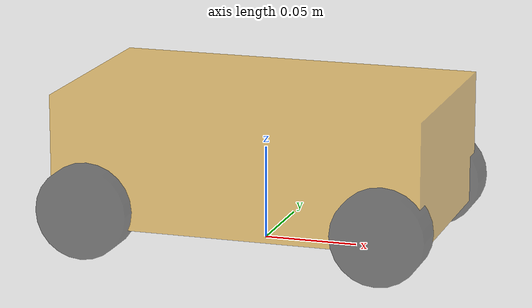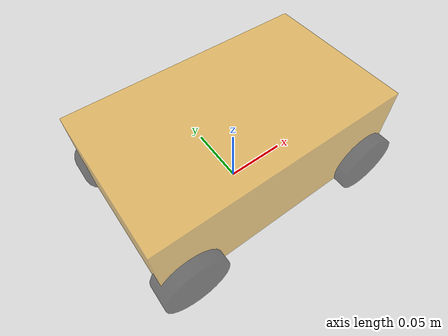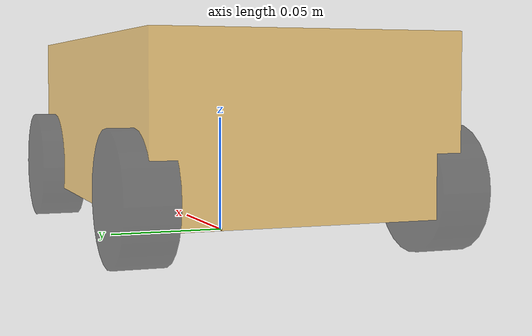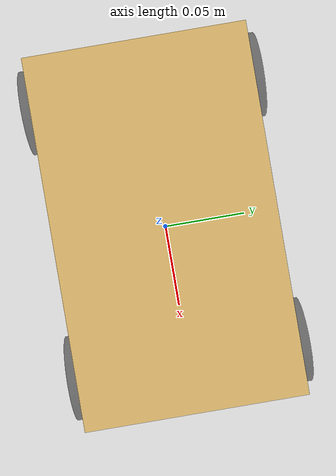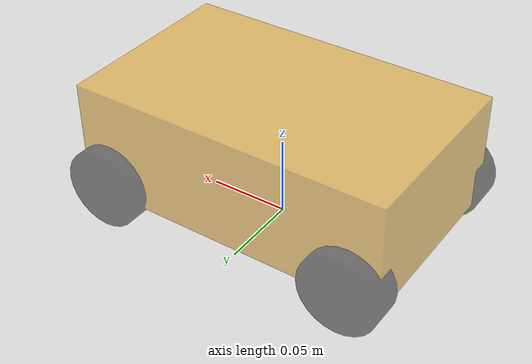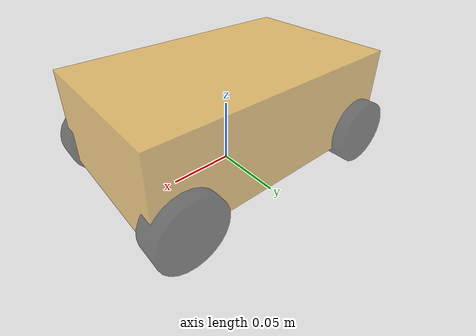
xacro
<!-- 底盘实现 -->
<robot xmlns:xacro="http://www.ros.org/wiki/xacro">
    <xacro:property name="PI" value="3.1415926" />

    <xacro:property name="car_length" value="0.2" />
    <xacro:property name="car_width" value="0.12" />
    <xacro:property name="car_height" value="0.07" />

    <xacro:property name="wheel_radius" value="0.025" />
    <xacro:property name="wheel_length" value="0.02" />

    <xacro:property name="wheel_joint_x" value="0.08" />
    <xacro:property name="wheel_joint_y" value="${car_width / 2}" />
    <xacro:property name="wheel_joint_z" value="${-(car_height / 2 + distance - wheel_radius)}" />

    <xacro:property name="distance" value="0.015" />

    <material name="yellow">
        <color rgba="0.9 0.6 0.0 0.5"/>
    </material>
    <material name="black">
        <color rgba="0.0 0.0 0.0 0.5"/>
    </material>
    <material name="lucency">
        <color rgba="0.0 0.0 0.0 0.0"/>
    </material>

    <link name="base_footprint">
        <!-- 形状描述 -->
        <visual>
            <geometry>
                <box size="0.001 0.001 0.001"/>
            </geometry>
            <material name="lucency"/>
        </visual>
        <!-- 碰撞描述 -->
        <collision>
            <geometry>
                <box size="0.001 0.001 0.001"/>
            </geometry>
        </collision>
        <!-- 物理信息 -->
        <inertial>
            <mass value="0.001"/>
            <inertia ixx="0.0" ixy="0.0" ixz="0.0" iyy="0.0" iyz="0.0" izz="0.0"/>
        </inertial>
    </link>

    <link name="base_link">
        <!-- 形状描述 -->
        <visual>
            <geometry>
                <box size="${car_length} ${car_width} ${car_height} "/>
            </geometry>
            <material name="yellow"/>
        </visual>
        <!-- 碰撞描述 -->
        <collision>
            <geometry>
                <box size="${car_length} ${car_width} ${car_height} "/>
            </geometry>
        </collision>
        <!-- 物理信息 -->
        <inertial>
            <mass value="0.5"/>
            <inertia ixx="0.0" ixy="0.0" ixz="0.0" iyy="0.0" iyz="0.0" izz="0.0"/>
        </inertial>
    </link>

    <joint name="base_link2base_footprint" type="fixed">
        <parent link="base_footprint"/>
        <child link="base_link"/>
        <origin xyz="0.0 0.0 ${car_height / 2 + distance}"/>
    </joint>

    <xacro:macro name="wheel_func" params="link_name front_flag left_flag">
        <link name="${link_name}">
            <visual>
                <geometry>
                    <cylinder radius="${wheel_radius}" length="${wheel_length}"/>
                </geometry>
                <material name="black"/>
                <origin rpy="1.57 0.0 0.0"/>
            </visual>

            <collision>
                <geometry>
                    <cylinder radius="${wheel_radius}" length="${wheel_length}"/>
                </geometry>
            </collision>

            <inertial>
                <mass value="0.1"/>
                <inertia ixx="0.0" ixy="0.0" ixz="0.0" iyy="0.0" iyz="0.0" izz="0.0"/>
            </inertial>
        </link>
        <joint name="${link_name}2base_link" type="continuous">
            <parent link="base_link"/>
            <child link="${link_name}"/>
            <origin xyz="${wheel_joint_x * front_flag} ${wheel_joint_y * left_flag} ${wheel_joint_z}"/>
            <axis xyz="0 1 0"/>
        </joint>
    </xacro:macro>

    <xacro:wheel_func link_name="front_left" front_flag="1" left_flag="1" />
    <xacro:wheel_func link_name="front_right" front_flag="1" left_flag="-1" />
    <xacro:wheel_func link_name="back_left" front_flag="-1" left_flag="1" />
    <xacro:wheel_func link_name="back_right" front_flag="-1" left_flag="-1" />

    <xacro:macro name="wheel_gazebo_func" params="link_name">
        <gazebo reference="${link_name}_gazebo">
            <mu1>0.5</mu1>
            <mu2>0.5</mu2>
            <kp>5000000.0</kp>
            <kd>10.0</kd>
            <minDepth>0.001</minDepth>
            <maxVel>1.0</maxVel>
            <fdir1>1 0 0</fdir1>
            <material>Gazebo/DarkGrey</material>
        </gazebo>
    </xacro:macro>

    <xacro:wheel_gazebo_func link_name="front_left" />
    <xacro:wheel_gazebo_func link_name="front_right" />
    <xacro:wheel_gazebo_func link_name="back_left" />
    <xacro:wheel_gazebo_func link_name="back_right" />

    <gazebo reference = "base_link">
        <material>Gazebo/DarkGrey</material>
    </gazebo>

   <!-- 麦轮控制器 -->
    <gazebo>
        <plugin name="mecanum_controller" filename="libgazebo_ros_planar_move.so">
            <commandTopic>cmd_vel</commandTopic>
            <odometryTopic>odom</odometryTopic>
            <odometryFrame>odom</odometryFrame>
            <leftFrontJoint>front_left2base_link</leftFrontJoint>
            <rightFrontJoint>front_right2base_link</rightFrontJoint>
            <leftRearJoint>back_left2base_link</leftRearJoint>
            <rightRearJoint>back_right2base_link</rightRearJoint>
            <odometryRate>100</odometryRate>
            <robotBaseFrame>base_footprint</robotBaseFrame>
            <broadcastTF>1</broadcastTF>
        </plugin>
    </gazebo>

</robot>
